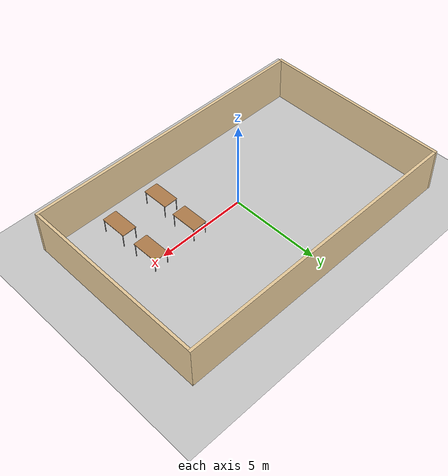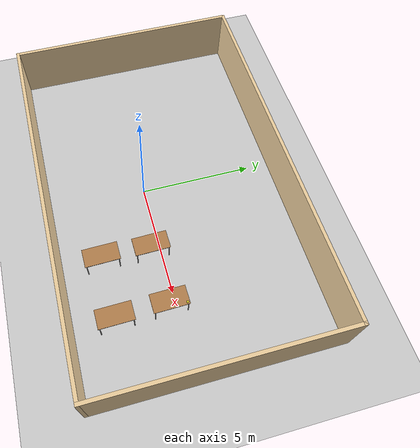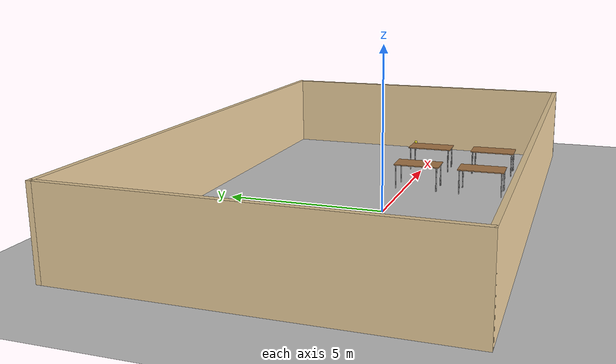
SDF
<sdf version="1.7">
 <world name="default">
  <model name="ground_plane">
   <static>1</static>
   <link name="link">
    <collision name="collision">
     <geometry><plane><normal>0 0 1</normal><size>100 100</size></plane></geometry>
     <surface>
      <contact><collide_bitmask>65535</collide_bitmask></contact>
      <friction><ode><mu>100</mu><mu2>50</mu2></ode></friction>
     </surface>
    </collision>
    <visual name="visual">
     <cast_shadows>0</cast_shadows>
     <geometry><plane><normal>0 0 1</normal><size>100 100</size></plane></geometry>
     <material>
      <script><uri>file://media/materials/scripts/gazebo.material</uri><name>Gazebo/Grey</name></script>
     </material>
    </visual>
   </link>
  </model>
  <model name="mapa_new">
   <pose>0.553189 0.87741 0 0 -0 0</pose>
   <link name="Wall_2">
    <collision name="Wall_2_Collision">
     <geometry><box><size>16.38 0.15 2.5</size></box></geometry>
     <pose>0 0 1.25 0 -0 0</pose>
    </collision>
    <visual name="Wall_2_Visual">
     <pose>0 0 1.25 0 -0 0</pose>
     <geometry><box><size>16.38 0.15 2.5</size></box></geometry>
     <material>
      <script><uri>file://media/materials/scripts/gazebo.material</uri><name>Gazebo/Grey</name></script>
      <ambient>0.921569 0.807843 0.615686 1</ambient>
     </material>
     <meta><layer>0</layer></meta>
    </visual>
    <pose>-0 5.175 0 0 -0 0</pose>
   </link>
   <link name="Wall_4">
    <collision name="Wall_4_Collision">
     <geometry><box><size>10.5 0.15 2.5</size></box></geometry>
     <pose>0 0 1.25 0 -0 0</pose>
    </collision>
    <visual name="Wall_4_Visual">
     <pose>0 0 1.25 0 -0 0</pose>
     <geometry><box><size>10.5 0.15 2.5</size></box></geometry>
     <material>
      <script><uri>file://media/materials/scripts/gazebo.material</uri><name>Gazebo/Grey</name></script>
      <ambient>0.921569 0.807843 0.615686 1</ambient>
     </material>
     <meta><layer>0</layer></meta>
    </visual>
    <pose>-8.115 0 0 0 -0 -1.5708</pose>
   </link>
   <link name="Wall_6">
    <collision name="Wall_6_Collision">
     <geometry><box><size>10.5 0.15 2.5</size></box></geometry>
     <pose>0 0 1.25 0 -0 0</pose>
    </collision>
    <visual name="Wall_6_Visual">
     <pose>0 0 1.25 0 -0 0</pose>
     <geometry><box><size>10.5 0.15 2.5</size></box></geometry>
     <material>
      <script><uri>file://media/materials/scripts/gazebo.material</uri><name>Gazebo/Grey</name></script>
      <ambient>0.921569 0.807843 0.615686 1</ambient>
     </material>
     <meta><layer>0</layer></meta>
    </visual>
    <pose>8.115 0 0 0 -0 -1.5708</pose>
   </link>
   <link name="Wall_8">
    <collision name="Wall_8_Collision">
     <geometry><box><size>16.38 0.15 2.5</size></box></geometry>
     <pose>0 0 1.25 0 -0 0</pose>
    </collision>
    <visual name="Wall_8_Visual">
     <pose>0 0 1.25 0 -0 0</pose>
     <geometry><box><size>16.38 0.15 2.5</size></box></geometry>
     <material>
      <script><uri>file://media/materials/scripts/gazebo.material</uri><name>Gazebo/Grey</name></script>
      <ambient>0.921569 0.807843 0.615686 1</ambient>
     </material>
     <meta><layer>0</layer></meta>
    </visual>
    <pose>-0 -5.175 0 0 -0 0</pose>
   </link>
   <static>1</static>
  </model>
  <model name="table_clone_clone_9">
   <link name="link">
    <inertial>
     <mass>1</mass>
     <pose>1.2 0 0.8 0 -0 0</pose>
     <inertia><ixx>1</ixx><ixy>0</ixy><ixz>0</ixz><iyy>1</iyy><iyz>0</iyz><izz>1</izz></inertia>
    </inertial>
    <visual name="back_right_leg">
     <pose>-0.68 -0.38 0.4 0 -0 0</pose>
     <geometry><cylinder><radius>0.02</radius><length>0.8</length></cylinder></geometry>
     <material>
      <script><uri>file://media/materials/scripts/gazebo.material</uri><name>Gazebo/Grey</name></script>
      <shader type="pixel"><normal_map>__default__</normal_map></shader>
      <ambient>0.3 0.3 0.3 1</ambient>
      <diffuse>0.7 0.7 0.7 1</diffuse>
      <specular>0.01 0.01 0.01 1</specular>
      <emissive>0 0 0 1</emissive>
     </material>
    </visual>
    <visual name="front_right_leg">
     <pose>0.68 -0.38 0.4 0 -0 0</pose>
     <geometry><cylinder><radius>0.02</radius><length>0.8</length></cylinder></geometry>
     <material>
      <script><uri>file://media/materials/scripts/gazebo.material</uri><name>Gazebo/Grey</name></script>
      <shader type="pixel"><normal_map>__default__</normal_map></shader>
      <ambient>0.3 0.3 0.3 1</ambient>
      <diffuse>0.7 0.7 0.7 1</diffuse>
      <specular>0.01 0.01 0.01 1</specular>
      <emissive>0 0 0 1</emissive>
     </material>
    </visual>
    <visual name="visual1">
     <pose>0 0 0.8 0 -0 0</pose>
     <geometry><box><size>1.5 0.8 0.03</size></box></geometry>
     <material>
      <script><uri>file://media/materials/scripts/gazebo.material</uri><name>Gazebo/Wood</name></script>
      <shader type="pixel"><normal_map>__default__</normal_map></shader>
      <ambient>1 1 1 1</ambient>
      <diffuse>1 1 1 1</diffuse>
      <specular>0.2 0.2 0.2 1</specular>
      <emissive>0 0 0 1</emissive>
     </material>
    </visual>
    <visual name="front_left_leg">
     <pose>0.68 0.38 0.4 0 -0 0</pose>
     <geometry><cylinder><radius>0.02</radius><length>0.8</length></cylinder></geometry>
     <material>
      <script><uri>file://media/materials/scripts/gazebo.material</uri><name>Gazebo/Grey</name></script>
      <shader type="pixel"><normal_map>__default__</normal_map></shader>
      <ambient>0.3 0.3 0.3 1</ambient>
      <diffuse>0.7 0.7 0.7 1</diffuse>
      <specular>0.01 0.01 0.01 1</specular>
      <emissive>0 0 0 1</emissive>
     </material>
    </visual>
    <visual name="back_left_leg">
     <pose>-0.68 0.38 0.4 0 -0 0</pose>
     <geometry><cylinder><radius>0.02</radius><length>0.8</length></cylinder></geometry>
     <material>
      <script><uri>file://media/materials/scripts/gazebo.material</uri><name>Gazebo/Grey</name></script>
      <shader type="pixel"><normal_map>__default__</normal_map></shader>
      <ambient>0.3 0.3 0.3 1</ambient>
      <diffuse>0.7 0.7 0.7 1</diffuse>
      <specular>0.01 0.01 0.01 1</specular>
      <emissive>0 0 0 1</emissive>
     </material>
    </visual>
    <collision name="back_right_leg">
     <pose>-0.68 -0.38 0.4 0 -0 0</pose>
     <geometry><cylinder><radius>0.02</radius><length>0.8</length></cylinder></geometry>
     <surface>
      <friction>
       <ode><mu>1</mu><mu2>1</mu2><fdir1>0 0 0</fdir1><slip1>0</slip1><slip2>0</slip2></ode>
       <torsional>
        <coefficient>1</coefficient>
        <patch_radius>0</patch_radius>
        <surface_radius>0</surface_radius>
        <use_patch_radius>1</use_patch_radius>
        <ode><slip>0</slip></ode>
       </torsional>
      </friction>
      <bounce><restitution_coefficient>0</restitution_coefficient><threshold>1e+06</threshold></bounce>
      <contact>
       <collide_without_contact>0</collide_without_contact>
       <collide_without_contact_bitmask>1</collide_without_contact_bitmask>
       <collide_bitmask>1</collide_bitmask>
       <ode>
        <soft_cfm>0</soft_cfm>
        <soft_erp>0.2</soft_erp>
        <kp>1e+13</kp>
        <kd>1</kd>
        <max_vel>0.01</max_vel>
        <min_depth>0</min_depth>
       </ode>
       <bullet>
        <split_impulse>1</split_impulse>
        <split_impulse_penetration_threshold>-0.01</split_impulse_penetration_threshold>
        <soft_cfm>0</soft_cfm>
        <soft_erp>0.2</soft_erp>
        <kp>1e+13</kp>
        <kd>1</kd>
       </bullet>
      </contact>
     </surface>
    </collision>
    <collision name="front_left_leg">
     <pose>0.68 0.38 0.4 0 -0 0</pose>
     <geometry><cylinder><radius>0.02</radius><length>0.8</length></cylinder></geometry>
     <surface>
      <friction>
       <ode><mu>1</mu><mu2>1</mu2><fdir1>0 0 0</fdir1><slip1>0</slip1><slip2>0</slip2></ode>
       <torsional>
        <coefficient>1</coefficient>
        <patch_radius>0</patch_radius>
        <surface_radius>0</surface_radius>
        <use_patch_radius>1</use_patch_radius>
        <ode><slip>0</slip></ode>
       </torsional>
      </friction>
      <bounce><restitution_coefficient>0</restitution_coefficient><threshold>1e+06</threshold></bounce>
      <contact>
       <collide_without_contact>0</collide_without_contact>
       <collide_without_contact_bitmask>1</collide_without_contact_bitmask>
       <collide_bitmask>1</collide_bitmask>
       <ode>
        <soft_cfm>0</soft_cfm>
        <soft_erp>0.2</soft_erp>
        <kp>1e+13</kp>
        <kd>1</kd>
        <max_vel>0.01</max_vel>
        <min_depth>0</min_depth>
       </ode>
       <bullet>
        <split_impulse>1</split_impulse>
        <split_impulse_penetration_threshold>-0.01</split_impulse_penetration_threshold>
        <soft_cfm>0</soft_cfm>
        <soft_erp>0.2</soft_erp>
        <kp>1e+13</kp>
        <kd>1</kd>
       </bullet>
      </contact>
     </surface>
    </collision>
    <collision name="back_left_leg">
     <pose>-0.68 0.38 0.4 0 -0 0</pose>
     <geometry><cylinder><radius>0.02</radius><length>0.8</length></cylinder></geometry>
     <surface>
      <friction>
       <ode><mu>1</mu><mu2>1</mu2><fdir1>0 0 0</fdir1><slip1>0</slip1><slip2>0</slip2></ode>
       <torsional>
        <coefficient>1</coefficient>
        <patch_radius>0</patch_radius>
        <surface_radius>0</surface_radius>
        <use_patch_radius>1</use_patch_radius>
        <ode><slip>0</slip></ode>
       </torsional>
      </friction>
      <bounce><restitution_coefficient>0</restitution_coefficient><threshold>1e+06</threshold></bounce>
      <contact>
       <collide_without_contact>0</collide_without_contact>
       <collide_without_contact_bitmask>1</collide_without_contact_bitmask>
       <collide_bitmask>1</collide_bitmask>
       <ode>
        <soft_cfm>0</soft_cfm>
        <soft_erp>0.2</soft_erp>
        <kp>1e+13</kp>
        <kd>1</kd>
        <max_vel>0.01</max_vel>
        <min_depth>0</min_depth>
       </ode>
       <bullet>
        <split_impulse>1</split_impulse>
        <split_impulse_penetration_threshold>-0.01</split_impulse_penetration_threshold>
        <soft_cfm>0</soft_cfm>
        <soft_erp>0.2</soft_erp>
        <kp>1e+13</kp>
        <kd>1</kd>
       </bullet>
      </contact>
     </surface>
    </collision>
    <collision name="surface">
     <pose>0 0 0.8 0 -0 0</pose>
     <geometry><box><size>1.5 0.8 0.03</size></box></geometry>
     <surface>
      <friction>
       <ode><mu>0.6</mu><mu2>0.6</mu2><fdir1>0 0 0</fdir1><slip1>0</slip1><slip2>0</slip2></ode>
       <torsional>
        <coefficient>1</coefficient>
        <patch_radius>0</patch_radius>
        <surface_radius>0</surface_radius>
        <use_patch_radius>1</use_patch_radius>
        <ode><slip>0</slip></ode>
       </torsional>
      </friction>
      <bounce><restitution_coefficient>0</restitution_coefficient><threshold>1e+06</threshold></bounce>
      <contact>
       <collide_without_contact>0</collide_without_contact>
       <collide_without_contact_bitmask>1</collide_without_contact_bitmask>
       <collide_bitmask>1</collide_bitmask>
       <ode>
        <soft_cfm>0</soft_cfm>
        <soft_erp>0.2</soft_erp>
        <kp>1e+13</kp>
        <kd>1</kd>
        <max_vel>0.01</max_vel>
        <min_depth>0</min_depth>
       </ode>
       <bullet>
        <split_impulse>1</split_impulse>
        <split_impulse_penetration_threshold>-0.01</split_impulse_penetration_threshold>
        <soft_cfm>0</soft_cfm>
        <soft_erp>0.2</soft_erp>
        <kp>1e+13</kp>
        <kd>1</kd>
       </bullet>
      </contact>
     </surface>
    </collision>
    <collision name="front_right_leg">
     <pose>0.68 -0.38 0.4 0 -0 0</pose>
     <geometry><cylinder><radius>0.02</radius><length>0.8</length></cylinder></geometry>
     <surface>
      <friction>
       <ode><mu>1</mu><mu2>1</mu2><fdir1>0 0 0</fdir1><slip1>0</slip1><slip2>0</slip2></ode>
       <torsional>
        <coefficient>1</coefficient>
        <patch_radius>0</patch_radius>
        <surface_radius>0</surface_radius>
        <use_patch_radius>1</use_patch_radius>
        <ode><slip>0</slip></ode>
       </torsional>
      </friction>
      <bounce><restitution_coefficient>0</restitution_coefficient><threshold>1e+06</threshold></bounce>
      <contact>
       <collide_without_contact>0</collide_without_contact>
       <collide_without_contact_bitmask>1</collide_without_contact_bitmask>
       <collide_bitmask>1</collide_bitmask>
       <ode>
        <soft_cfm>0</soft_cfm>
        <soft_erp>0.2</soft_erp>
        <kp>1e+13</kp>
        <kd>1</kd>
        <max_vel>0.01</max_vel>
        <min_depth>0</min_depth>
       </ode>
       <bullet>
        <split_impulse>1</split_impulse>
        <split_impulse_penetration_threshold>-0.01</split_impulse_penetration_threshold>
        <soft_cfm>0</soft_cfm>
        <soft_erp>0.2</soft_erp>
        <kp>1e+13</kp>
        <kd>1</kd>
       </bullet>
      </contact>
     </surface>
    </collision>
   </link>
   <static>1</static>
   <pose>2.94436 -0.386852 0 0 0 -1.55553</pose>
  </model>
  <model name="table_clone_clone_10">
   <link name="link">
    <inertial>
     <mass>1</mass>
     <pose>1.2 0 0.8 0 -0 0</pose>
     <inertia><ixx>1</ixx><ixy>0</ixy><ixz>0</ixz><iyy>1</iyy><iyz>0</iyz><izz>1</izz></inertia>
    </inertial>
    <visual name="back_right_leg">
     <pose>-0.68 -0.38 0.4 0 -0 0</pose>
     <geometry><cylinder><radius>0.02</radius><length>0.8</length></cylinder></geometry>
     <material>
      <script><uri>file://media/materials/scripts/gazebo.material</uri><name>Gazebo/Grey</name></script>
      <shader type="pixel"><normal_map>__default__</normal_map></shader>
      <ambient>0.3 0.3 0.3 1</ambient>
      <diffuse>0.7 0.7 0.7 1</diffuse>
      <specular>0.01 0.01 0.01 1</specular>
      <emissive>0 0 0 1</emissive>
     </material>
    </visual>
    <visual name="front_right_leg">
     <pose>0.68 -0.38 0.4 0 -0 0</pose>
     <geometry><cylinder><radius>0.02</radius><length>0.8</length></cylinder></geometry>
     <material>
      <script><uri>file://media/materials/scripts/gazebo.material</uri><name>Gazebo/Grey</name></script>
      <shader type="pixel"><normal_map>__default__</normal_map></shader>
      <ambient>0.3 0.3 0.3 1</ambient>
      <diffuse>0.7 0.7 0.7 1</diffuse>
      <specular>0.01 0.01 0.01 1</specular>
      <emissive>0 0 0 1</emissive>
     </material>
    </visual>
    <visual name="visual1">
     <pose>0 0 0.8 0 -0 0</pose>
     <geometry><box><size>1.5 0.8 0.03</size></box></geometry>
     <material>
      <script><uri>file://media/materials/scripts/gazebo.material</uri><name>Gazebo/Wood</name></script>
      <shader type="pixel"><normal_map>__default__</normal_map></shader>
      <ambient>1 1 1 1</ambient>
      <diffuse>1 1 1 1</diffuse>
      <specular>0.2 0.2 0.2 1</specular>
      <emissive>0 0 0 1</emissive>
     </material>
    </visual>
    <visual name="front_left_leg">
     <pose>0.68 0.38 0.4 0 -0 0</pose>
     <geometry><cylinder><radius>0.02</radius><length>0.8</length></cylinder></geometry>
     <material>
      <script><uri>file://media/materials/scripts/gazebo.material</uri><name>Gazebo/Grey</name></script>
      <shader type="pixel"><normal_map>__default__</normal_map></shader>
      <ambient>0.3 0.3 0.3 1</ambient>
      <diffuse>0.7 0.7 0.7 1</diffuse>
      <specular>0.01 0.01 0.01 1</specular>
      <emissive>0 0 0 1</emissive>
     </material>
    </visual>
    <visual name="back_left_leg">
     <pose>-0.68 0.38 0.4 0 -0 0</pose>
     <geometry><cylinder><radius>0.02</radius><length>0.8</length></cylinder></geometry>
     <material>
      <script><uri>file://media/materials/scripts/gazebo.material</uri><name>Gazebo/Grey</name></script>
      <shader type="pixel"><normal_map>__default__</normal_map></shader>
      <ambient>0.3 0.3 0.3 1</ambient>
      <diffuse>0.7 0.7 0.7 1</diffuse>
      <specular>0.01 0.01 0.01 1</specular>
      <emissive>0 0 0 1</emissive>
     </material>
    </visual>
    <collision name="back_right_leg">
     <pose>-0.68 -0.38 0.4 0 -0 0</pose>
     <geometry><cylinder><radius>0.02</radius><length>0.8</length></cylinder></geometry>
     <surface>
      <friction>
       <ode><mu>1</mu><mu2>1</mu2><fdir1>0 0 0</fdir1><slip1>0</slip1><slip2>0</slip2></ode>
       <torsional>
        <coefficient>1</coefficient>
        <patch_radius>0</patch_radius>
        <surface_radius>0</surface_radius>
        <use_patch_radius>1</use_patch_radius>
        <ode><slip>0</slip></ode>
       </torsional>
      </friction>
      <bounce><restitution_coefficient>0</restitution_coefficient><threshold>1e+06</threshold></bounce>
      <contact>
       <collide_without_contact>0</collide_without_contact>
       <collide_without_contact_bitmask>1</collide_without_contact_bitmask>
       <collide_bitmask>1</collide_bitmask>
       <ode>
        <soft_cfm>0</soft_cfm>
        <soft_erp>0.2</soft_erp>
        <kp>1e+13</kp>
        <kd>1</kd>
        <max_vel>0.01</max_vel>
        <min_depth>0</min_depth>
       </ode>
       <bullet>
        <split_impulse>1</split_impulse>
        <split_impulse_penetration_threshold>-0.01</split_impulse_penetration_threshold>
        <soft_cfm>0</soft_cfm>
        <soft_erp>0.2</soft_erp>
        <kp>1e+13</kp>
        <kd>1</kd>
       </bullet>
      </contact>
     </surface>
    </collision>
    <collision name="front_left_leg">
     <pose>0.68 0.38 0.4 0 -0 0</pose>
     <geometry><cylinder><radius>0.02</radius><length>0.8</length></cylinder></geometry>
     <surface>
      <friction>
       <ode><mu>1</mu><mu2>1</mu2><fdir1>0 0 0</fdir1><slip1>0</slip1><slip2>0</slip2></ode>
       <torsional>
        <coefficient>1</coefficient>
        <patch_radius>0</patch_radius>
        <surface_radius>0</surface_radius>
        <use_patch_radius>1</use_patch_radius>
        <ode><slip>0</slip></ode>
       </torsional>
      </friction>
      <bounce><restitution_coefficient>0</restitution_coefficient><threshold>1e+06</threshold></bounce>
      <contact>
       <collide_without_contact>0</collide_without_contact>
       <collide_without_contact_bitmask>1</collide_without_contact_bitmask>
       <collide_bitmask>1</collide_bitmask>
       <ode>
        <soft_cfm>0</soft_cfm>
        <soft_erp>0.2</soft_erp>
        <kp>1e+13</kp>
        <kd>1</kd>
        <max_vel>0.01</max_vel>
        <min_depth>0</min_depth>
       </ode>
       <bullet>
        <split_impulse>1</split_impulse>
        <split_impulse_penetration_threshold>-0.01</split_impulse_penetration_threshold>
        <soft_cfm>0</soft_cfm>
        <soft_erp>0.2</soft_erp>
        <kp>1e+13</kp>
        <kd>1</kd>
       </bullet>
      </contact>
     </surface>
    </collision>
    <collision name="back_left_leg">
     <pose>-0.68 0.38 0.4 0 -0 0</pose>
     <geometry><cylinder><radius>0.02</radius><length>0.8</length></cylinder></geometry>
     <surface>
      <friction>
       <ode><mu>1</mu><mu2>1</mu2><fdir1>0 0 0</fdir1><slip1>0</slip1><slip2>0</slip2></ode>
       <torsional>
        <coefficient>1</coefficient>
        <patch_radius>0</patch_radius>
        <surface_radius>0</surface_radius>
        <use_patch_radius>1</use_patch_radius>
        <ode><slip>0</slip></ode>
       </torsional>
      </friction>
      <bounce><restitution_coefficient>0</restitution_coefficient><threshold>1e+06</threshold></bounce>
      <contact>
       <collide_without_contact>0</collide_without_contact>
       <collide_without_contact_bitmask>1</collide_without_contact_bitmask>
       <collide_bitmask>1</collide_bitmask>
       <ode>
        <soft_cfm>0</soft_cfm>
        <soft_erp>0.2</soft_erp>
        <kp>1e+13</kp>
        <kd>1</kd>
        <max_vel>0.01</max_vel>
        <min_depth>0</min_depth>
       </ode>
       <bullet>
        <split_impulse>1</split_impulse>
        <split_impulse_penetration_threshold>-0.01</split_impulse_penetration_threshold>
        <soft_cfm>0</soft_cfm>
        <soft_erp>0.2</soft_erp>
        <kp>1e+13</kp>
        <kd>1</kd>
       </bullet>
      </contact>
     </surface>
    </collision>
    <collision name="surface">
     <pose>0 0 0.8 0 -0 0</pose>
     <geometry><box><size>1.5 0.8 0.03</size></box></geometry>
     <surface>
      <friction>
       <ode><mu>0.6</mu><mu2>0.6</mu2><fdir1>0 0 0</fdir1><slip1>0</slip1><slip2>0</slip2></ode>
       <torsional>
        <coefficient>1</coefficient>
        <patch_radius>0</patch_radius>
        <surface_radius>0</surface_radius>
        <use_patch_radius>1</use_patch_radius>
        <ode><slip>0</slip></ode>
       </torsional>
      </friction>
      <bounce><restitution_coefficient>0</restitution_coefficient><threshold>1e+06</threshold></bounce>
      <contact>
       <collide_without_contact>0</collide_without_contact>
       <collide_without_contact_bitmask>1</collide_without_contact_bitmask>
       <collide_bitmask>1</collide_bitmask>
       <ode>
        <soft_cfm>0</soft_cfm>
        <soft_erp>0.2</soft_erp>
        <kp>1e+13</kp>
        <kd>1</kd>
        <max_vel>0.01</max_vel>
        <min_depth>0</min_depth>
       </ode>
       <bullet>
        <split_impulse>1</split_impulse>
        <split_impulse_penetration_threshold>-0.01</split_impulse_penetration_threshold>
        <soft_cfm>0</soft_cfm>
        <soft_erp>0.2</soft_erp>
        <kp>1e+13</kp>
        <kd>1</kd>
       </bullet>
      </contact>
     </surface>
    </collision>
    <collision name="front_right_leg">
     <pose>0.68 -0.38 0.4 0 -0 0</pose>
     <geometry><cylinder><radius>0.02</radius><length>0.8</length></cylinder></geometry>
     <surface>
      <friction>
       <ode><mu>1</mu><mu2>1</mu2><fdir1>0 0 0</fdir1><slip1>0</slip1><slip2>0</slip2></ode>
       <torsional>
        <coefficient>1</coefficient>
        <patch_radius>0</patch_radius>
        <surface_radius>0</surface_radius>
        <use_patch_radius>1</use_patch_radius>
        <ode><slip>0</slip></ode>
       </torsional>
      </friction>
      <bounce><restitution_coefficient>0</restitution_coefficient><threshold>1e+06</threshold></bounce>
      <contact>
       <collide_without_contact>0</collide_without_contact>
       <collide_without_contact_bitmask>1</collide_without_contact_bitmask>
       <collide_bitmask>1</collide_bitmask>
       <ode>
        <soft_cfm>0</soft_cfm>
        <soft_erp>0.2</soft_erp>
        <kp>1e+13</kp>
        <kd>1</kd>
        <max_vel>0.01</max_vel>
        <min_depth>0</min_depth>
       </ode>
       <bullet>
        <split_impulse>1</split_impulse>
        <split_impulse_penetration_threshold>-0.01</split_impulse_penetration_threshold>
        <soft_cfm>0</soft_cfm>
        <soft_erp>0.2</soft_erp>
        <kp>1e+13</kp>
        <kd>1</kd>
       </bullet>
      </contact>
     </surface>
    </collision>
   </link>
   <static>1</static>
   <pose>2.91333 -2.50734 0 0 0 -1.55553</pose>
  </model>
  <model name="table_clone_clone_11">
   <link name="link">
    <inertial>
     <mass>1</mass>
     <pose>1.2 0 0.8 0 -0 0</pose>
     <inertia><ixx>1</ixx><ixy>0</ixy><ixz>0</ixz><iyy>1</iyy><iyz>0</iyz><izz>1</izz></inertia>
    </inertial>
    <visual name="back_right_leg">
     <pose>-0.68 -0.38 0.4 0 -0 0</pose>
     <geometry><cylinder><radius>0.02</radius><length>0.8</length></cylinder></geometry>
     <material>
      <script><uri>file://media/materials/scripts/gazebo.material</uri><name>Gazebo/Grey</name></script>
      <shader type="pixel"><normal_map>__default__</normal_map></shader>
      <ambient>0.3 0.3 0.3 1</ambient>
      <diffuse>0.7 0.7 0.7 1</diffuse>
      <specular>0.01 0.01 0.01 1</specular>
      <emissive>0 0 0 1</emissive>
     </material>
    </visual>
    <visual name="front_right_leg">
     <pose>0.68 -0.38 0.4 0 -0 0</pose>
     <geometry><cylinder><radius>0.02</radius><length>0.8</length></cylinder></geometry>
     <material>
      <script><uri>file://media/materials/scripts/gazebo.material</uri><name>Gazebo/Grey</name></script>
      <shader type="pixel"><normal_map>__default__</normal_map></shader>
      <ambient>0.3 0.3 0.3 1</ambient>
      <diffuse>0.7 0.7 0.7 1</diffuse>
      <specular>0.01 0.01 0.01 1</specular>
      <emissive>0 0 0 1</emissive>
     </material>
    </visual>
    <visual name="visual1">
     <pose>0 0 0.8 0 -0 0</pose>
     <geometry><box><size>1.5 0.8 0.03</size></box></geometry>
     <material>
      <script><uri>file://media/materials/scripts/gazebo.material</uri><name>Gazebo/Wood</name></script>
      <shader type="pixel"><normal_map>__default__</normal_map></shader>
      <ambient>1 1 1 1</ambient>
      <diffuse>1 1 1 1</diffuse>
      <specular>0.2 0.2 0.2 1</specular>
      <emissive>0 0 0 1</emissive>
     </material>
    </visual>
    <visual name="front_left_leg">
     <pose>0.68 0.38 0.4 0 -0 0</pose>
     <geometry><cylinder><radius>0.02</radius><length>0.8</length></cylinder></geometry>
     <material>
      <script><uri>file://media/materials/scripts/gazebo.material</uri><name>Gazebo/Grey</name></script>
      <shader type="pixel"><normal_map>__default__</normal_map></shader>
      <ambient>0.3 0.3 0.3 1</ambient>
      <diffuse>0.7 0.7 0.7 1</diffuse>
      <specular>0.01 0.01 0.01 1</specular>
      <emissive>0 0 0 1</emissive>
     </material>
    </visual>
    <visual name="back_left_leg">
     <pose>-0.68 0.38 0.4 0 -0 0</pose>
     <geometry><cylinder><radius>0.02</radius><length>0.8</length></cylinder></geometry>
     <material>
      <script><uri>file://media/materials/scripts/gazebo.material</uri><name>Gazebo/Grey</name></script>
      <shader type="pixel"><normal_map>__default__</normal_map></shader>
      <ambient>0.3 0.3 0.3 1</ambient>
      <diffuse>0.7 0.7 0.7 1</diffuse>
      <specular>0.01 0.01 0.01 1</specular>
      <emissive>0 0 0 1</emissive>
     </material>
    </visual>
    <collision name="back_right_leg">
     <pose>-0.68 -0.38 0.4 0 -0 0</pose>
     <geometry><cylinder><radius>0.02</radius><length>0.8</length></cylinder></geometry>
     <surface>
      <friction>
       <ode><mu>1</mu><mu2>1</mu2><fdir1>0 0 0</fdir1><slip1>0</slip1><slip2>0</slip2></ode>
       <torsional>
        <coefficient>1</coefficient>
        <patch_radius>0</patch_radius>
        <surface_radius>0</surface_radius>
        <use_patch_radius>1</use_patch_radius>
        <ode><slip>0</slip></ode>
       </torsional>
      </friction>
      <bounce><restitution_coefficient>0</restitution_coefficient><threshold>1e+06</threshold></bounce>
      <contact>
       <collide_without_contact>0</collide_without_contact>
       <collide_without_contact_bitmask>1</collide_without_contact_bitmask>
       <collide_bitmask>1</collide_bitmask>
       <ode>
        <soft_cfm>0</soft_cfm>
        <soft_erp>0.2</soft_erp>
        <kp>1e+13</kp>
        <kd>1</kd>
        <max_vel>0.01</max_vel>
        <min_depth>0</min_depth>
       </ode>
       <bullet>
        <split_impulse>1</split_impulse>
        <split_impulse_penetration_threshold>-0.01</split_impulse_penetration_threshold>
        <soft_cfm>0</soft_cfm>
        <soft_erp>0.2</soft_erp>
        <kp>1e+13</kp>
        <kd>1</kd>
       </bullet>
      </contact>
     </surface>
    </collision>
    <collision name="front_left_leg">
     <pose>0.68 0.38 0.4 0 -0 0</pose>
     <geometry><cylinder><radius>0.02</radius><length>0.8</length></cylinder></geometry>
     <surface>
      <friction>
       <ode><mu>1</mu><mu2>1</mu2><fdir1>0 0 0</fdir1><slip1>0</slip1><slip2>0</slip2></ode>
       <torsional>
        <coefficient>1</coefficient>
        <patch_radius>0</patch_radius>
        <surface_radius>0</surface_radius>
        <use_patch_radius>1</use_patch_radius>
        <ode><slip>0</slip></ode>
       </torsional>
      </friction>
      <bounce><restitution_coefficient>0</restitution_coefficient><threshold>1e+06</threshold></bounce>
      <contact>
       <collide_without_contact>0</collide_without_contact>
       <collide_without_contact_bitmask>1</collide_without_contact_bitmask>
       <collide_bitmask>1</collide_bitmask>
       <ode>
        <soft_cfm>0</soft_cfm>
        <soft_erp>0.2</soft_erp>
        <kp>1e+13</kp>
        <kd>1</kd>
        <max_vel>0.01</max_vel>
        <min_depth>0</min_depth>
       </ode>
       <bullet>
        <split_impulse>1</split_impulse>
        <split_impulse_penetration_threshold>-0.01</split_impulse_penetration_threshold>
        <soft_cfm>0</soft_cfm>
        <soft_erp>0.2</soft_erp>
        <kp>1e+13</kp>
        <kd>1</kd>
       </bullet>
      </contact>
     </surface>
    </collision>
    <collision name="back_left_leg">
     <pose>-0.68 0.38 0.4 0 -0 0</pose>
     <geometry><cylinder><radius>0.02</radius><length>0.8</length></cylinder></geometry>
     <surface>
      <friction>
       <ode><mu>1</mu><mu2>1</mu2><fdir1>0 0 0</fdir1><slip1>0</slip1><slip2>0</slip2></ode>
       <torsional>
        <coefficient>1</coefficient>
        <patch_radius>0</patch_radius>
        <surface_radius>0</surface_radius>
        <use_patch_radius>1</use_patch_radius>
        <ode><slip>0</slip></ode>
       </torsional>
      </friction>
      <bounce><restitution_coefficient>0</restitution_coefficient><threshold>1e+06</threshold></bounce>
      <contact>
       <collide_without_contact>0</collide_without_contact>
       <collide_without_contact_bitmask>1</collide_without_contact_bitmask>
       <collide_bitmask>1</collide_bitmask>
       <ode>
        <soft_cfm>0</soft_cfm>
        <soft_erp>0.2</soft_erp>
        <kp>1e+13</kp>
        <kd>1</kd>
        <max_vel>0.01</max_vel>
        <min_depth>0</min_depth>
       </ode>
       <bullet>
        <split_impulse>1</split_impulse>
        <split_impulse_penetration_threshold>-0.01</split_impulse_penetration_threshold>
        <soft_cfm>0</soft_cfm>
        <soft_erp>0.2</soft_erp>
        <kp>1e+13</kp>
        <kd>1</kd>
       </bullet>
      </contact>
     </surface>
    </collision>
    <collision name="surface">
     <pose>0 0 0.8 0 -0 0</pose>
     <geometry><box><size>1.5 0.8 0.03</size></box></geometry>
     <surface>
      <friction>
       <ode><mu>0.6</mu><mu2>0.6</mu2><fdir1>0 0 0</fdir1><slip1>0</slip1><slip2>0</slip2></ode>
       <torsional>
        <coefficient>1</coefficient>
        <patch_radius>0</patch_radius>
        <surface_radius>0</surface_radius>
        <use_patch_radius>1</use_patch_radius>
        <ode><slip>0</slip></ode>
       </torsional>
      </friction>
      <bounce><restitution_coefficient>0</restitution_coefficient><threshold>1e+06</threshold></bounce>
      <contact>
       <collide_without_contact>0</collide_without_contact>
       <collide_without_contact_bitmask>1</collide_without_contact_bitmask>
       <collide_bitmask>1</collide_bitmask>
       <ode>
        <soft_cfm>0</soft_cfm>
        <soft_erp>0.2</soft_erp>
        <kp>1e+13</kp>
        <kd>1</kd>
        <max_vel>0.01</max_vel>
        <min_depth>0</min_depth>
       </ode>
       <bullet>
        <split_impulse>1</split_impulse>
        <split_impulse_penetration_threshold>-0.01</split_impulse_penetration_threshold>
        <soft_cfm>0</soft_cfm>
        <soft_erp>0.2</soft_erp>
        <kp>1e+13</kp>
        <kd>1</kd>
       </bullet>
      </contact>
     </surface>
    </collision>
    <collision name="front_right_leg">
     <pose>0.68 -0.38 0.4 0 -0 0</pose>
     <geometry><cylinder><radius>0.02</radius><length>0.8</length></cylinder></geometry>
     <surface>
      <friction>
       <ode><mu>1</mu><mu2>1</mu2><fdir1>0 0 0</fdir1><slip1>0</slip1><slip2>0</slip2></ode>
       <torsional>
        <coefficient>1</coefficient>
        <patch_radius>0</patch_radius>
        <surface_radius>0</surface_radius>
        <use_patch_radius>1</use_patch_radius>
        <ode><slip>0</slip></ode>
       </torsional>
      </friction>
      <bounce><restitution_coefficient>0</restitution_coefficient><threshold>1e+06</threshold></bounce>
      <contact>
       <collide_without_contact>0</collide_without_contact>
       <collide_without_contact_bitmask>1</collide_without_contact_bitmask>
       <collide_bitmask>1</collide_bitmask>
       <ode>
        <soft_cfm>0</soft_cfm>
        <soft_erp>0.2</soft_erp>
        <kp>1e+13</kp>
        <kd>1</kd>
        <max_vel>0.01</max_vel>
        <min_depth>0</min_depth>
       </ode>
       <bullet>
        <split_impulse>1</split_impulse>
        <split_impulse_penetration_threshold>-0.01</split_impulse_penetration_threshold>
        <soft_cfm>0</soft_cfm>
        <soft_erp>0.2</soft_erp>
        <kp>1e+13</kp>
        <kd>1</kd>
       </bullet>
      </contact>
     </surface>
    </collision>
   </link>
   <static>1</static>
   <pose>5.54109 -2.49347 0 0 0 -1.55553</pose>
  </model>
  <model name="table_clone_clone_12">
   <link name="link">
    <inertial>
     <mass>1</mass>
     <pose>1.2 0 0.8 0 -0 0</pose>
     <inertia><ixx>1</ixx><ixy>0</ixy><ixz>0</ixz><iyy>1</iyy><iyz>0</iyz><izz>1</izz></inertia>
    </inertial>
    <visual name="back_right_leg">
     <pose>-0.68 -0.38 0.4 0 -0 0</pose>
     <geometry><cylinder><radius>0.02</radius><length>0.8</length></cylinder></geometry>
     <material>
      <script><uri>file://media/materials/scripts/gazebo.material</uri><name>Gazebo/Grey</name></script>
      <shader type="pixel"><normal_map>__default__</normal_map></shader>
      <ambient>0.3 0.3 0.3 1</ambient>
      <diffuse>0.7 0.7 0.7 1</diffuse>
      <specular>0.01 0.01 0.01 1</specular>
      <emissive>0 0 0 1</emissive>
     </material>
    </visual>
    <visual name="front_right_leg">
     <pose>0.68 -0.38 0.4 0 -0 0</pose>
     <geometry><cylinder><radius>0.02</radius><length>0.8</length></cylinder></geometry>
     <material>
      <script><uri>file://media/materials/scripts/gazebo.material</uri><name>Gazebo/Grey</name></script>
      <shader type="pixel"><normal_map>__default__</normal_map></shader>
      <ambient>0.3 0.3 0.3 1</ambient>
      <diffuse>0.7 0.7 0.7 1</diffuse>
      <specular>0.01 0.01 0.01 1</specular>
      <emissive>0 0 0 1</emissive>
     </material>
    </visual>
    <visual name="visual1">
     <pose>0 0 0.8 0 -0 0</pose>
     <geometry><box><size>1.5 0.8 0.03</size></box></geometry>
     <material>
      <script><uri>file://media/materials/scripts/gazebo.material</uri><name>Gazebo/Wood</name></script>
      <shader type="pixel"><normal_map>__default__</normal_map></shader>
      <ambient>1 1 1 1</ambient>
      <diffuse>1 1 1 1</diffuse>
      <specular>0.2 0.2 0.2 1</specular>
      <emissive>0 0 0 1</emissive>
     </material>
    </visual>
    <visual name="front_left_leg">
     <pose>0.68 0.38 0.4 0 -0 0</pose>
     <geometry><cylinder><radius>0.02</radius><length>0.8</length></cylinder></geometry>
     <material>
      <script><uri>file://media/materials/scripts/gazebo.material</uri><name>Gazebo/Grey</name></script>
      <shader type="pixel"><normal_map>__default__</normal_map></shader>
      <ambient>0.3 0.3 0.3 1</ambient>
      <diffuse>0.7 0.7 0.7 1</diffuse>
      <specular>0.01 0.01 0.01 1</specular>
      <emissive>0 0 0 1</emissive>
     </material>
    </visual>
    <visual name="back_left_leg">
     <pose>-0.68 0.38 0.4 0 -0 0</pose>
     <geometry><cylinder><radius>0.02</radius><length>0.8</length></cylinder></geometry>
     <material>
      <script><uri>file://media/materials/scripts/gazebo.material</uri><name>Gazebo/Grey</name></script>
      <shader type="pixel"><normal_map>__default__</normal_map></shader>
      <ambient>0.3 0.3 0.3 1</ambient>
      <diffuse>0.7 0.7 0.7 1</diffuse>
      <specular>0.01 0.01 0.01 1</specular>
      <emissive>0 0 0 1</emissive>
     </material>
    </visual>
    <collision name="back_right_leg">
     <pose>-0.68 -0.38 0.4 0 -0 0</pose>
     <geometry><cylinder><radius>0.02</radius><length>0.8</length></cylinder></geometry>
     <surface>
      <friction>
       <ode><mu>1</mu><mu2>1</mu2><fdir1>0 0 0</fdir1><slip1>0</slip1><slip2>0</slip2></ode>
       <torsional>
        <coefficient>1</coefficient>
        <patch_radius>0</patch_radius>
        <surface_radius>0</surface_radius>
        <use_patch_radius>1</use_patch_radius>
        <ode><slip>0</slip></ode>
       </torsional>
      </friction>
      <bounce><restitution_coefficient>0</restitution_coefficient><threshold>1e+06</threshold></bounce>
      <contact>
       <collide_without_contact>0</collide_without_contact>
       <collide_without_contact_bitmask>1</collide_without_contact_bitmask>
       <collide_bitmask>1</collide_bitmask>
       <ode>
        <soft_cfm>0</soft_cfm>
        <soft_erp>0.2</soft_erp>
        <kp>1e+13</kp>
        <kd>1</kd>
        <max_vel>0.01</max_vel>
        <min_depth>0</min_depth>
       </ode>
       <bullet>
        <split_impulse>1</split_impulse>
        <split_impulse_penetration_threshold>-0.01</split_impulse_penetration_threshold>
        <soft_cfm>0</soft_cfm>
        <soft_erp>0.2</soft_erp>
        <kp>1e+13</kp>
        <kd>1</kd>
       </bullet>
      </contact>
     </surface>
    </collision>
    <collision name="front_left_leg">
     <pose>0.68 0.38 0.4 0 -0 0</pose>
     <geometry><cylinder><radius>0.02</radius><length>0.8</length></cylinder></geometry>
     <surface>
      <friction>
       <ode><mu>1</mu><mu2>1</mu2><fdir1>0 0 0</fdir1><slip1>0</slip1><slip2>0</slip2></ode>
       <torsional>
        <coefficient>1</coefficient>
        <patch_radius>0</patch_radius>
        <surface_radius>0</surface_radius>
        <use_patch_radius>1</use_patch_radius>
        <ode><slip>0</slip></ode>
       </torsional>
      </friction>
      <bounce><restitution_coefficient>0</restitution_coefficient><threshold>1e+06</threshold></bounce>
      <contact>
       <collide_without_contact>0</collide_without_contact>
       <collide_without_contact_bitmask>1</collide_without_contact_bitmask>
       <collide_bitmask>1</collide_bitmask>
       <ode>
        <soft_cfm>0</soft_cfm>
        <soft_erp>0.2</soft_erp>
        <kp>1e+13</kp>
        <kd>1</kd>
        <max_vel>0.01</max_vel>
        <min_depth>0</min_depth>
       </ode>
       <bullet>
        <split_impulse>1</split_impulse>
        <split_impulse_penetration_threshold>-0.01</split_impulse_penetration_threshold>
        <soft_cfm>0</soft_cfm>
        <soft_erp>0.2</soft_erp>
        <kp>1e+13</kp>
        <kd>1</kd>
       </bullet>
      </contact>
     </surface>
    </collision>
    <collision name="back_left_leg">
     <pose>-0.68 0.38 0.4 0 -0 0</pose>
     <geometry><cylinder><radius>0.02</radius><length>0.8</length></cylinder></geometry>
     <surface>
      <friction>
       <ode><mu>1</mu><mu2>1</mu2><fdir1>0 0 0</fdir1><slip1>0</slip1><slip2>0</slip2></ode>
       <torsional>
        <coefficient>1</coefficient>
        <patch_radius>0</patch_radius>
        <surface_radius>0</surface_radius>
        <use_patch_radius>1</use_patch_radius>
        <ode><slip>0</slip></ode>
       </torsional>
      </friction>
      <bounce><restitution_coefficient>0</restitution_coefficient><threshold>1e+06</threshold></bounce>
      <contact>
       <collide_without_contact>0</collide_without_contact>
       <collide_without_contact_bitmask>1</collide_without_contact_bitmask>
       <collide_bitmask>1</collide_bitmask>
       <ode>
        <soft_cfm>0</soft_cfm>
        <soft_erp>0.2</soft_erp>
        <kp>1e+13</kp>
        <kd>1</kd>
        <max_vel>0.01</max_vel>
        <min_depth>0</min_depth>
       </ode>
       <bullet>
        <split_impulse>1</split_impulse>
        <split_impulse_penetration_threshold>-0.01</split_impulse_penetration_threshold>
        <soft_cfm>0</soft_cfm>
        <soft_erp>0.2</soft_erp>
        <kp>1e+13</kp>
        <kd>1</kd>
       </bullet>
      </contact>
     </surface>
    </collision>
    <collision name="surface">
     <pose>0 0 0.8 0 -0 0</pose>
     <geometry><box><size>1.5 0.8 0.03</size></box></geometry>
     <surface>
      <friction>
       <ode><mu>0.6</mu><mu2>0.6</mu2><fdir1>0 0 0</fdir1><slip1>0</slip1><slip2>0</slip2></ode>
       <torsional>
        <coefficient>1</coefficient>
        <patch_radius>0</patch_radius>
        <surface_radius>0</surface_radius>
        <use_patch_radius>1</use_patch_radius>
        <ode><slip>0</slip></ode>
       </torsional>
      </friction>
      <bounce><restitution_coefficient>0</restitution_coefficient><threshold>1e+06</threshold></bounce>
      <contact>
       <collide_without_contact>0</collide_without_contact>
       <collide_without_contact_bitmask>1</collide_without_contact_bitmask>
       <collide_bitmask>1</collide_bitmask>
       <ode>
        <soft_cfm>0</soft_cfm>
        <soft_erp>0.2</soft_erp>
        <kp>1e+13</kp>
        <kd>1</kd>
        <max_vel>0.01</max_vel>
        <min_depth>0</min_depth>
       </ode>
       <bullet>
        <split_impulse>1</split_impulse>
        <split_impulse_penetration_threshold>-0.01</split_impulse_penetration_threshold>
        <soft_cfm>0</soft_cfm>
        <soft_erp>0.2</soft_erp>
        <kp>1e+13</kp>
        <kd>1</kd>
       </bullet>
      </contact>
     </surface>
    </collision>
    <collision name="front_right_leg">
     <pose>0.68 -0.38 0.4 0 -0 0</pose>
     <geometry><cylinder><radius>0.02</radius><length>0.8</length></cylinder></geometry>
     <surface>
      <friction>
       <ode><mu>1</mu><mu2>1</mu2><fdir1>0 0 0</fdir1><slip1>0</slip1><slip2>0</slip2></ode>
       <torsional>
        <coefficient>1</coefficient>
        <patch_radius>0</patch_radius>
        <surface_radius>0</surface_radius>
        <use_patch_radius>1</use_patch_radius>
        <ode><slip>0</slip></ode>
       </torsional>
      </friction>
      <bounce><restitution_coefficient>0</restitution_coefficient><threshold>1e+06</threshold></bounce>
      <contact>
       <collide_without_contact>0</collide_without_contact>
       <collide_without_contact_bitmask>1</collide_without_contact_bitmask>
       <collide_bitmask>1</collide_bitmask>
       <ode>
        <soft_cfm>0</soft_cfm>
        <soft_erp>0.2</soft_erp>
        <kp>1e+13</kp>
        <kd>1</kd>
        <max_vel>0.01</max_vel>
        <min_depth>0</min_depth>
       </ode>
       <bullet>
        <split_impulse>1</split_impulse>
        <split_impulse_penetration_threshold>-0.01</split_impulse_penetration_threshold>
        <soft_cfm>0</soft_cfm>
        <soft_erp>0.2</soft_erp>
        <kp>1e+13</kp>
        <kd>1</kd>
       </bullet>
      </contact>
     </surface>
    </collision>
   </link>
   <static>1</static>
   <pose>5.48224 -0.264979 0 0 0 -1.55553</pose>
  </model>
  <model name="indicador_esfera_0_clone_1">
   <link name="link">
    <inertial>
     <mass>1</mass>
     <inertia><ixx>0.1</ixx><ixy>0</ixy><ixz>0</ixz><iyy>0.1</iyy><iyz>0</iyz><izz>0.1</izz></inertia>
    </inertial>
    <visual name="visual">
     <geometry><sphere><radius>0.05</radius></sphere></geometry>
     <material>
      <script><name>Gazebo/Yellow</name><uri>file://media/materials/scripts/gazebo.material</uri></script>
      <shader type="pixel"><normal_map>__default__</normal_map></shader>
      <ambient>1 1 0 1</ambient>
      <diffuse>1 1 0 1</diffuse>
      <emissive>0 0 0 1</emissive>
     </material>
    </visual>
    <collision name="collision">
     <geometry><sphere><radius>0.05</radius></sphere></geometry>
     <surface>
      <friction>
       <ode><mu>1</mu><mu2>1</mu2><fdir1>0 0 0</fdir1><slip1>0</slip1><slip2>0</slip2></ode>
       <torsional>
        <coefficient>1</coefficient>
        <patch_radius>0</patch_radius>
        <surface_radius>0</surface_radius>
        <use_patch_radius>1</use_patch_radius>
        <ode><slip>0</slip></ode>
       </torsional>
      </friction>
      <bounce><restitution_coefficient>0</restitution_coefficient><threshold>1e+06</threshold></bounce>
      <contact>
       <collide_without_contact>0</collide_without_contact>
       <collide_without_contact_bitmask>1</collide_without_contact_bitmask>
       <collide_bitmask>1</collide_bitmask>
       <ode>
        <soft_cfm>0</soft_cfm>
        <soft_erp>0.2</soft_erp>
        <kp>1e+13</kp>
        <kd>1</kd>
        <max_vel>0.01</max_vel>
        <min_depth>0</min_depth>
       </ode>
       <bullet>
        <split_impulse>1</split_impulse>
        <split_impulse_penetration_threshold>-0.01</split_impulse_penetration_threshold>
        <soft_cfm>0</soft_cfm>
        <soft_erp>0.2</soft_erp>
        <kp>1e+13</kp>
        <kd>1</kd>
       </bullet>
      </contact>
     </surface>
    </collision>
   </link>
   <static>0</static>
   <pose>5.78877 0.386143 0.865 -0 -0 -0</pose>
  </model>
 </world>
</sdf>
